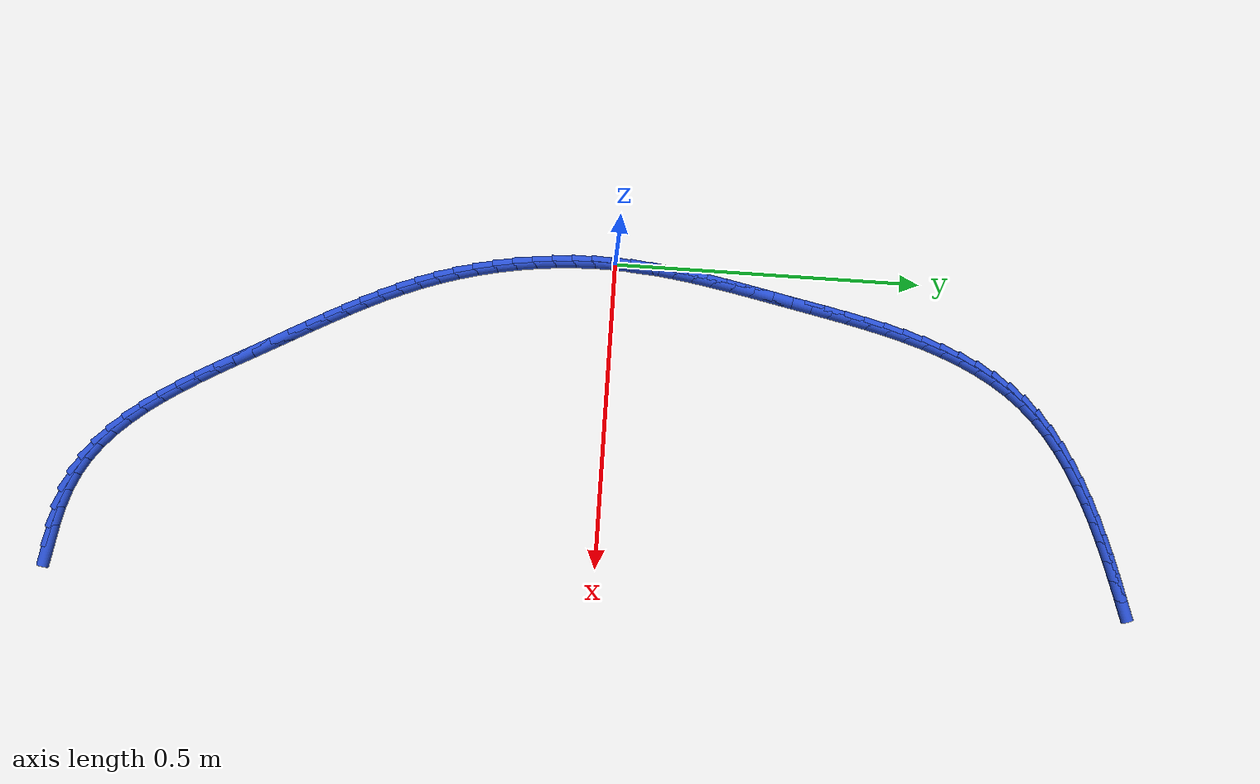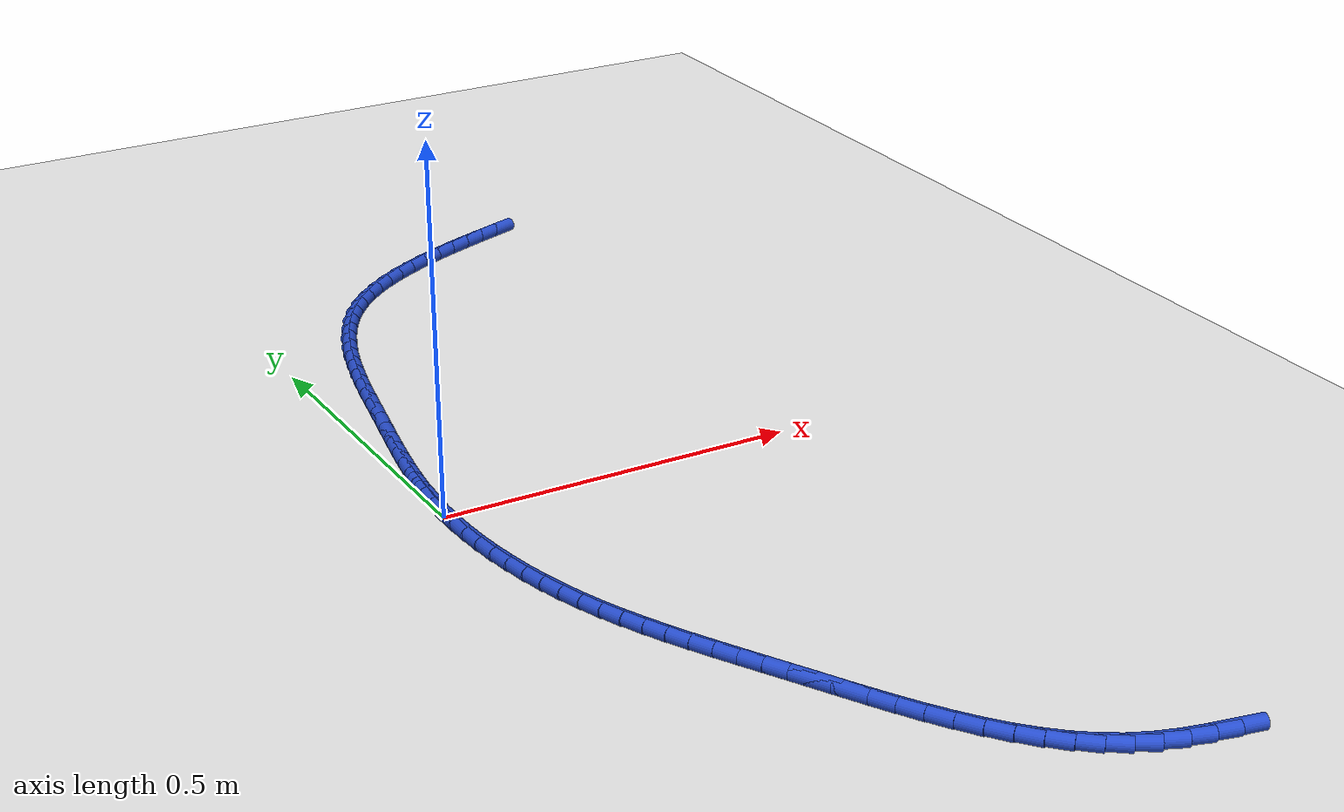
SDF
<sdf version="1.6">
 <world name="default">
  <model name="ground_plane">
   <static>1</static>
   <link name="link">
    <collision name="collision">
     <geometry><plane><normal>0 0 1</normal><size>100 100</size></plane></geometry>
     <surface><friction><ode><mu>100</mu><mu2>50</mu2></ode></friction></surface>
    </collision>
    <visual name="visual">
     <cast_shadows>0</cast_shadows>
     <geometry><plane><normal>0 0 1</normal><size>100 100</size></plane></geometry>
     <material>
      <script><uri>file://media/materials/scripts/gazebo.material</uri><name>Gazebo/WhiteGlow</name></script>
     </material>
    </visual>
   </link>
  </model>
  <model name="line">
   <link name="link_0">
    <pose>1.214306433183765e-17 6.938893903907228e-18 0.01 0 1.57 1.5225617370868163</pose>
    <collision name="collision">
     <geometry><cylinder><radius>0.01</radius><length>0.08</length></cylinder></geometry>
    </collision>
    <visual name="visual">
     <material>
      <script><name>Gazebo/Blue</name><uri>file://media/materials/scripts/gazebo.material</uri></script>
     </material>
     <geometry><cylinder><radius>0.01</radius><length>0.08</length></cylinder></geometry>
    </visual>
   </link>
   <link name="link_1">
    <pose>0.001538935067202059 0.03188047018547949 0.01 0 1.57 1.4866853946187928</pose>
    <collision name="collision">
     <geometry><cylinder><radius>0.01</radius><length>0.08</length></cylinder></geometry>
    </collision>
    <visual name="visual">
     <material>
      <script><name>Gazebo/Blue</name><uri>file://media/materials/scripts/gazebo.material</uri></script>
     </material>
     <geometry><cylinder><radius>0.01</radius><length>0.08</length></cylinder></geometry>
    </visual>
   </link>
   <link name="link_2">
    <pose>0.004210966931550192 0.06357346885209629 0.01 0 1.57 1.455333848812436</pose>
    <collision name="collision">
     <geometry><cylinder><radius>0.01</radius><length>0.08</length></cylinder></geometry>
    </collision>
    <visual name="visual">
     <material>
      <script><name>Gazebo/Blue</name><uri>file://media/materials/scripts/gazebo.material</uri></script>
     </material>
     <geometry><cylinder><radius>0.01</radius><length>0.08</length></cylinder></geometry>
    </visual>
   </link>
   <link name="link_3">
    <pose>0.007872541864150538 0.09514466830303787 0.01 0 1.57 1.4287310129041615</pose>
    <collision name="collision">
     <geometry><cylinder><radius>0.01</radius><length>0.08</length></cylinder></geometry>
    </collision>
    <visual name="visual">
     <material>
      <script><name>Gazebo/Blue</name><uri>file://media/materials/scripts/gazebo.material</uri></script>
     </material>
     <geometry><cylinder><radius>0.01</radius><length>0.08</length></cylinder></geometry>
    </visual>
   </link>
   <link name="link_4">
    <pose>0.012380106136109228 0.12665974084149179 0.01 0 1.57 1.4070091517079606</pose>
    <collision name="collision">
     <geometry><cylinder><radius>0.01</radius><length>0.08</length></cylinder></geometry>
    </collision>
    <visual name="visual">
     <material>
      <script><name>Gazebo/Blue</name><uri>file://media/materials/scripts/gazebo.material</uri></script>
     </material>
     <geometry><cylinder><radius>0.01</radius><length>0.08</length></cylinder></geometry>
    </visual>
   </link>
   <link name="link_5">
    <pose>0.017590106018532385 0.15818435877064543 0.01 0 1.57 1.3902243578277642</pose>
    <collision name="collision">
     <geometry><cylinder><radius>0.01</radius><length>0.08</length></cylinder></geometry>
    </collision>
    <visual name="visual">
     <material>
      <script><name>Gazebo/Blue</name><uri>file://media/materials/scripts/gazebo.material</uri></script>
     </material>
     <geometry><cylinder><radius>0.01</radius><length>0.08</length></cylinder></geometry>
    </visual>
   </link>
   <link name="link_6">
    <pose>0.023358987782526146 0.1897841943936864 0.01 0 1.57 1.378371838764414</pose>
    <collision name="collision">
     <geometry><cylinder><radius>0.01</radius><length>0.08</length></cylinder></geometry>
    </collision>
    <visual name="visual">
     <material>
      <script><name>Gazebo/Blue</name><uri>file://media/materials/scripts/gazebo.material</uri></script>
     </material>
     <geometry><cylinder><radius>0.01</radius><length>0.08</length></cylinder></geometry>
    </visual>
   </link>
   <link name="link_7">
    <pose>0.02954319769919665 0.22152492001380222 0.01 0 1.57 1.3713992717515353</pose>
    <collision name="collision">
     <geometry><cylinder><radius>0.01</radius><length>0.08</length></cylinder></geometry>
    </collision>
    <visual name="visual">
     <material>
      <script><name>Gazebo/Blue</name><uri>file://media/materials/scripts/gazebo.material</uri></script>
     </material>
     <geometry><cylinder><radius>0.01</radius><length>0.08</length></cylinder></geometry>
    </visual>
   </link>
   <link name="link_8">
    <pose>0.03599918203964998 0.2534722079341802 0.01 0 1.57 1.36921725694863</pose>
    <collision name="collision">
     <geometry><cylinder><radius>0.01</radius><length>0.08</length></cylinder></geometry>
    </collision>
    <visual name="visual">
     <material>
      <script><name>Gazebo/Blue</name><uri>file://media/materials/scripts/gazebo.material</uri></script>
     </material>
     <geometry><cylinder><radius>0.01</radius><length>0.08</length></cylinder></geometry>
    </visual>
   </link>
   <link name="link_9">
    <pose>0.04258338707499231 0.285691730458008 0.01 0 1.57 1.3710342729951255</pose>
    <collision name="collision">
     <geometry><cylinder><radius>0.01</radius><length>0.08</length></cylinder></geometry>
    </collision>
    <visual name="visual">
     <material>
      <script><name>Gazebo/Blue</name><uri>file://media/materials/scripts/gazebo.material</uri></script>
     </material>
     <geometry><cylinder><radius>0.01</radius><length>0.08</length></cylinder></geometry>
    </visual>
   </link>
   <link name="link_10">
    <pose>0.04917210961871936 0.3182346867112502 0.01 0 1.57 1.370329673234076</pose>
    <collision name="collision">
     <geometry><cylinder><radius>0.01</radius><length>0.08</length></cylinder></geometry>
    </collision>
    <visual name="visual">
     <material>
      <script><name>Gazebo/Blue</name><uri>file://media/materials/scripts/gazebo.material</uri></script>
     </material>
     <geometry><cylinder><radius>0.01</radius><length>0.08</length></cylinder></geometry>
    </visual>
   </link>
   <link name="link_11">
    <pose>0.05583254689926626 0.3510130889159019 0.01 0 1.57 1.3635773732517178</pose>
    <collision name="collision">
     <geometry><cylinder><radius>0.01</radius><length>0.08</length></cylinder></geometry>
    </collision>
    <visual name="visual">
     <material>
      <script><name>Gazebo/Blue</name><uri>file://media/materials/scripts/gazebo.material</uri></script>
     </material>
     <geometry><cylinder><radius>0.01</radius><length>0.08</length></cylinder></geometry>
    </visual>
   </link>
   <link name="link_12">
    <pose>0.06273844161529021 0.38386126620386646 0.01 0 1.57 1.3507266355099148</pose>
    <collision name="collision">
     <geometry><cylinder><radius>0.01</radius><length>0.08</length></cylinder></geometry>
    </collision>
    <visual name="visual">
     <material>
      <script><name>Gazebo/Blue</name><uri>file://media/materials/scripts/gazebo.material</uri></script>
     </material>
     <geometry><cylinder><radius>0.01</radius><length>0.08</length></cylinder></geometry>
    </visual>
   </link>
   <link name="link_13">
    <pose>0.0700646955437524 0.4166127026144865 0.01 0 1.57 1.3316353631254956</pose>
    <collision name="collision">
     <geometry><cylinder><radius>0.01</radius><length>0.08</length></cylinder></geometry>
    </collision>
    <visual name="visual">
     <material>
      <script><name>Gazebo/Blue</name><uri>file://media/materials/scripts/gazebo.material</uri></script>
     </material>
     <geometry><cylinder><radius>0.01</radius><length>0.08</length></cylinder></geometry>
    </visual>
   </link>
   <link name="link_14">
    <pose>0.07798621046161396 0.4491008821871044 0.01 0 1.57 1.30604081625387</pose>
    <collision name="collision">
     <geometry><cylinder><radius>0.01</radius><length>0.08</length></cylinder></geometry>
    </collision>
    <visual name="visual">
     <material>
      <script><name>Gazebo/Blue</name><uri>file://media/materials/scripts/gazebo.material</uri></script>
     </material>
     <geometry><cylinder><radius>0.01</radius><length>0.08</length></cylinder></geometry>
    </visual>
   </link>
   <link name="link_15">
    <pose>0.08667788814583602 0.48115928896106275 0.01 0 1.57 1.2735728215244417</pose>
    <collision name="collision">
     <geometry><cylinder><radius>0.01</radius><length>0.08</length></cylinder></geometry>
    </collision>
    <visual name="visual">
     <material>
      <script><name>Gazebo/Blue</name><uri>file://media/materials/scripts/gazebo.material</uri></script>
     </material>
     <geometry><cylinder><radius>0.01</radius><length>0.08</length></cylinder></geometry>
    </visual>
   </link>
   <link name="link_16">
    <pose>0.09631463037337971 0.512621406975704 0.01 0 1.57 1.2337748024901196</pose>
    <collision name="collision">
     <geometry><cylinder><radius>0.01</radius><length>0.08</length></cylinder></geometry>
    </collision>
    <visual name="visual">
     <material>
      <script><name>Gazebo/Blue</name><uri>file://media/materials/scripts/gazebo.material</uri></script>
     </material>
     <geometry><cylinder><radius>0.01</radius><length>0.08</length></cylinder></geometry>
    </visual>
   </link>
   <link name="link_17">
    <pose>0.10707133892120617 0.5433207202703704 0.01 0 1.57 1.1861391492259479</pose>
    <collision name="collision">
     <geometry><cylinder><radius>0.01</radius><length>0.08</length></cylinder></geometry>
    </collision>
    <visual name="visual">
     <material>
      <script><name>Gazebo/Blue</name><uri>file://media/materials/scripts/gazebo.material</uri></script>
     </material>
     <geometry><cylinder><radius>0.01</radius><length>0.08</length></cylinder></geometry>
    </visual>
   </link>
   <link name="link_18">
    <pose>0.1191229155662766 0.5730907128844047 0.01 0 1.57 1.1301652648463916</pose>
    <collision name="collision">
     <geometry><cylinder><radius>0.01</radius><length>0.08</length></cylinder></geometry>
    </collision>
    <visual name="visual">
     <material>
      <script><name>Gazebo/Blue</name><uri>file://media/materials/scripts/gazebo.material</uri></script>
     </material>
     <geometry><cylinder><radius>0.01</radius><length>0.08</length></cylinder></geometry>
    </visual>
   </link>
   <link name="link_19">
    <pose>0.13264426208555213 0.6017648688571493 0.01 0 1.57 1.065449106538437</pose>
    <collision name="collision">
     <geometry><cylinder><radius>0.01</radius><length>0.08</length></cylinder></geometry>
    </collision>
    <visual name="visual">
     <material>
      <script><name>Gazebo/Blue</name><uri>file://media/materials/scripts/gazebo.material</uri></script>
     </material>
     <geometry><cylinder><radius>0.01</radius><length>0.08</length></cylinder></geometry>
    </visual>
   </link>
   <link name="link_20">
    <pose>0.14781028025599385 0.6291766722279466 0.01 0 1.57 0.991809695278978</pose>
    <collision name="collision">
     <geometry><cylinder><radius>0.01</radius><length>0.08</length></cylinder></geometry>
    </collision>
    <visual name="visual">
     <material>
      <script><name>Gazebo/Blue</name><uri>file://media/materials/scripts/gazebo.material</uri></script>
     </material>
     <geometry><cylinder><radius>0.01</radius><length>0.08</length></cylinder></geometry>
    </visual>
   </link>
   <link name="link_21">
    <pose>0.1647958718545629 0.6551596070361391 0.01 0 1.57 0.9094473548559179</pose>
    <collision name="collision">
     <geometry><cylinder><radius>0.01</radius><length>0.08</length></cylinder></geometry>
    </collision>
    <visual name="visual">
     <material>
      <script><name>Gazebo/Blue</name><uri>file://media/materials/scripts/gazebo.material</uri></script>
     </material>
     <geometry><cylinder><radius>0.01</radius><length>0.08</length></cylinder></geometry>
    </visual>
   </link>
   <link name="link_22">
    <pose>0.1837759386582205 0.6795471573210692 0.01 0 1.57 0.8205057366804371</pose>
    <collision name="collision">
     <geometry><cylinder><radius>0.01</radius><length>0.08</length></cylinder></geometry>
    </collision>
    <visual name="visual">
     <material>
      <script><name>Gazebo/Blue</name><uri>file://media/materials/scripts/gazebo.material</uri></script>
     </material>
     <geometry><cylinder><radius>0.01</radius><length>0.08</length></cylinder></geometry>
    </visual>
   </link>
   <link name="link_23">
    <pose>0.2048900490887264 0.7021983944753233 0.01 0 1.57 0.7361860833241909</pose>
    <collision name="collision">
     <geometry><cylinder><radius>0.01</radius><length>0.08</length></cylinder></geometry>
    </collision>
    <visual name="visual">
     <material>
      <script><name>Gazebo/Blue</name><uri>file://media/materials/scripts/gazebo.material</uri></script>
     </material>
     <geometry><cylinder><radius>0.01</radius><length>0.08</length></cylinder></geometry>
    </visual>
   </link>
   <link name="link_24">
    <pose>0.22802132071984266 0.7231581038832696 0.01 0 1.57 0.6613907636054641</pose>
    <collision name="collision">
     <geometry><cylinder><radius>0.01</radius><length>0.08</length></cylinder></geometry>
    </collision>
    <visual name="visual">
     <material>
      <script><name>Gazebo/Blue</name><uri>file://media/materials/scripts/gazebo.material</uri></script>
     </material>
     <geometry><cylinder><radius>0.01</radius><length>0.08</length></cylinder></geometry>
    </visual>
   </link>
   <link name="link_25">
    <pose>0.25293973699146355 0.7425529992666985 0.01 0 1.57 0.5959907343727335</pose>
    <collision name="collision">
     <geometry><cylinder><radius>0.01</radius><length>0.08</length></cylinder></geometry>
    </collision>
    <visual name="visual">
     <material>
      <script><name>Gazebo/Blue</name><uri>file://media/materials/scripts/gazebo.material</uri></script>
     </material>
     <geometry><cylinder><radius>0.01</radius><length>0.08</length></cylinder></geometry>
    </visual>
   </link>
   <link name="link_26">
    <pose>0.27941478531019587 0.7605101535597917 0.01 0 1.57 0.539514092258927</pose>
    <collision name="collision">
     <geometry><cylinder><radius>0.01</radius><length>0.08</length></cylinder></geometry>
    </collision>
    <visual name="visual">
     <material>
      <script><name>Gazebo/Blue</name><uri>file://media/materials/scripts/gazebo.material</uri></script>
     </material>
     <geometry><cylinder><radius>0.01</radius><length>0.08</length></cylinder></geometry>
    </visual>
   </link>
   <link name="link_27">
    <pose>0.3072159530826459 0.7771566396967292 0.01 0 1.57 0.4913378514632935</pose>
    <collision name="collision">
     <geometry><cylinder><radius>0.01</radius><length>0.08</length></cylinder></geometry>
    </collision>
    <visual name="visual">
     <material>
      <script><name>Gazebo/Blue</name><uri>file://media/materials/scripts/gazebo.material</uri></script>
     </material>
     <geometry><cylinder><radius>0.01</radius><length>0.08</length></cylinder></geometry>
    </visual>
   </link>
   <link name="link_28">
    <pose>0.33611272771542017 0.7926195306116915 0.01 0 1.57 0.4508100851412401</pose>
    <collision name="collision">
     <geometry><cylinder><radius>0.01</radius><length>0.08</length></cylinder></geometry>
    </collision>
    <visual name="visual">
     <material>
      <script><name>Gazebo/Blue</name><uri>file://media/materials/scripts/gazebo.material</uri></script>
     </material>
     <geometry><cylinder><radius>0.01</radius><length>0.08</length></cylinder></geometry>
    </visual>
   </link>
   <link name="link_29">
    <pose>0.3658745966151252 0.80702589923886 0.01 0 1.57 0.4173279921610457</pose>
    <collision name="collision">
     <geometry><cylinder><radius>0.01</radius><length>0.08</length></cylinder></geometry>
    </collision>
    <visual name="visual">
     <material>
      <script><name>Gazebo/Blue</name><uri>file://media/materials/scripts/gazebo.material</uri></script>
     </material>
     <geometry><cylinder><radius>0.01</radius><length>0.08</length></cylinder></geometry>
    </visual>
   </link>
   <link name="link_30">
    <pose>0.39627104718836764 0.820502818512415 0.01 0 1.57 0.3903842734429037</pose>
    <collision name="collision">
     <geometry><cylinder><radius>0.01</radius><length>0.08</length></cylinder></geometry>
    </collision>
    <visual name="visual">
     <material>
      <script><name>Gazebo/Blue</name><uri>file://media/materials/scripts/gazebo.material</uri></script>
     </material>
     <geometry><cylinder><radius>0.01</radius><length>0.08</length></cylinder></geometry>
    </visual>
   </link>
   <link name="link_31">
    <pose>0.4270715668417537 0.8331773613665373 0.01 0 1.57 0.36959403629268767</pose>
    <collision name="collision">
     <geometry><cylinder><radius>0.01</radius><length>0.08</length></cylinder></geometry>
    </collision>
    <visual name="visual">
     <material>
      <script><name>Gazebo/Blue</name><uri>file://media/materials/scripts/gazebo.material</uri></script>
     </material>
     <geometry><cylinder><radius>0.01</radius><length>0.08</length></cylinder></geometry>
    </visual>
   </link>
   <link name="link_32">
    <pose>0.4580456429818903 0.845176600735408 0.01 0 1.57 0.35470477418256385</pose>
    <collision name="collision">
     <geometry><cylinder><radius>0.01</radius><length>0.08</length></cylinder></geometry>
    </collision>
    <visual name="visual">
     <material>
      <script><name>Gazebo/Blue</name><uri>file://media/materials/scripts/gazebo.material</uri></script>
     </material>
     <geometry><cylinder><radius>0.01</radius><length>0.08</length></cylinder></geometry>
    </visual>
   </link>
   <link name="link_33">
    <pose>0.4889633488913533 0.8566275720607001 0.01 0 1.57 0.34464761237326624</pose>
    <collision name="collision">
     <geometry><cylinder><radius>0.01</radius><length>0.08</length></cylinder></geometry>
    </collision>
    <visual name="visual">
     <material>
      <script><name>Gazebo/Blue</name><uri>file://media/materials/scripts/gazebo.material</uri></script>
     </material>
     <geometry><cylinder><radius>0.01</radius><length>0.08</length></cylinder></geometry>
    </visual>
   </link>
   <link name="link_176">
    <pose>0.5170683795455051 -0.8910182449206505 0.01 0 1.57 -0.1913418410467637</pose>
    <collision name="collision">
     <geometry><cylinder><radius>0.01</radius><length>0.08</length></cylinder></geometry>
    </collision>
    <visual name="visual">
     <material>
      <script><name>Gazebo/Blue</name><uri>file://media/materials/scripts/gazebo.material</uri></script>
     </material>
     <geometry><cylinder><radius>0.01</radius><length>0.08</length></cylinder></geometry>
    </visual>
   </link>
   <link name="link_177">
    <pose>0.4856905332471882 -0.8849399899387843 0.01 0 1.57 -0.24486145402102563</pose>
    <collision name="collision">
     <geometry><cylinder><radius>0.01</radius><length>0.08</length></cylinder></geometry>
    </collision>
    <visual name="visual">
     <material>
      <script><name>Gazebo/Blue</name><uri>file://media/materials/scripts/gazebo.material</uri></script>
     </material>
     <geometry><cylinder><radius>0.01</radius><length>0.08</length></cylinder></geometry>
    </visual>
   </link>
   <link name="link_178">
    <pose>0.4553076012065647 -0.877348040546343 0.01 0 1.57 -0.3231906567569481</pose>
    <collision name="collision">
     <geometry><cylinder><radius>0.01</radius><length>0.08</length></cylinder></geometry>
    </collision>
    <visual name="visual">
     <material>
      <script><name>Gazebo/Blue</name><uri>file://media/materials/scripts/gazebo.material</uri></script>
     </material>
     <geometry><cylinder><radius>0.01</radius><length>0.08</length></cylinder></geometry>
    </visual>
   </link>
   <link name="link_179">
    <pose>0.4262115774868905 -0.8676027866340968 0.01 0 1.57 -0.4275061918619606</pose>
    <collision name="collision">
     <geometry><cylinder><radius>0.01</radius><length>0.08</length></cylinder></geometry>
    </collision>
    <visual name="visual">
     <material>
      <script><name>Gazebo/Blue</name><uri>file://media/materials/scripts/gazebo.material</uri></script>
     </material>
     <geometry><cylinder><radius>0.01</radius><length>0.08</length></cylinder></geometry>
    </visual>
   </link>
   <link name="link_180">
    <pose>0.3986940046700926 -0.8550656118717932 0.01 0 1.57 -0.5473215215068316</pose>
    <collision name="collision">
     <geometry><cylinder><radius>0.01</radius><length>0.08</length></cylinder></geometry>
    </collision>
    <visual name="visual">
     <material>
      <script><name>Gazebo/Blue</name><uri>file://media/materials/scripts/gazebo.material</uri></script>
     </material>
     <geometry><cylinder><radius>0.01</radius><length>0.08</length></cylinder></geometry>
    </visual>
   </link>
   <link name="link_181">
    <pose>0.372926374589636 -0.8393621498596827 0.01 0 1.57 -0.6574235807658118</pose>
    <collision name="collision">
     <geometry><cylinder><radius>0.01</radius><length>0.08</length></cylinder></geometry>
    </collision>
    <visual name="visual">
     <material>
      <script><name>Gazebo/Blue</name><uri>file://media/materials/scripts/gazebo.material</uri></script>
     </material>
     <geometry><cylinder><radius>0.01</radius><length>0.08</length></cylinder></geometry>
    </visual>
   </link>
   <link name="link_182">
    <pose>0.34879925889868857 -0.8207363821806201 0.01 0 1.57 -0.7530192209728769</pose>
    <collision name="collision">
     <geometry><cylinder><radius>0.01</radius><length>0.08</length></cylinder></geometry>
    </collision>
    <visual name="visual">
     <material>
      <script><name>Gazebo/Blue</name><uri>file://media/materials/scripts/gazebo.material</uri></script>
     </material>
     <geometry><cylinder><radius>0.01</radius><length>0.08</length></cylinder></geometry>
    </visual>
   </link>
   <link name="link_183">
    <pose>0.32616310694685896 -0.7995206057013117 0.01 0 1.57 -0.8340271128580058</pose>
    <collision name="collision">
     <geometry><cylinder><radius>0.01</radius><length>0.08</length></cylinder></geometry>
    </collision>
    <visual name="visual">
     <material>
      <script><name>Gazebo/Blue</name><uri>file://media/materials/scripts/gazebo.material</uri></script>
     </material>
     <geometry><cylinder><radius>0.01</radius><length>0.08</length></cylinder></geometry>
    </visual>
   </link>
   <link name="link_184">
    <pose>0.30486836808375695 -0.7760471172884645 0.01 0 1.57 -0.9012684540095958</pose>
    <collision name="collision">
     <geometry><cylinder><radius>0.01</radius><length>0.08</length></cylinder></geometry>
    </collision>
    <visual name="visual">
     <material>
      <script><name>Gazebo/Blue</name><uri>file://media/materials/scripts/gazebo.material</uri></script>
     </material>
     <geometry><cylinder><radius>0.01</radius><length>0.08</length></cylinder></geometry>
    </visual>
   </link>
   <link name="link_185">
    <pose>0.28476549165899134 -0.7506482138087854 0.01 0 1.57 -0.9559510882508738</pose>
    <collision name="collision">
     <geometry><cylinder><radius>0.01</radius><length>0.08</length></cylinder></geometry>
    </collision>
    <visual name="visual">
     <material>
      <script><name>Gazebo/Blue</name><uri>file://media/materials/scripts/gazebo.material</uri></script>
     </material>
     <geometry><cylinder><radius>0.01</radius><length>0.08</length></cylinder></geometry>
    </visual>
   </link>
   <link name="link_186">
    <pose>0.265704927022171 -0.7236561921289802 0.01 0 1.57 -0.9993270843893337</pose>
    <collision name="collision">
     <geometry><cylinder><radius>0.01</radius><length>0.08</length></cylinder></geometry>
    </collision>
    <visual name="visual">
     <material>
      <script><name>Gazebo/Blue</name><uri>file://media/materials/scripts/gazebo.material</uri></script>
     </material>
     <geometry><cylinder><radius>0.01</radius><length>0.08</length></cylinder></geometry>
    </visual>
   </link>
   <link name="link_187">
    <pose>0.24753712352290522 -0.6954033491157562 0.01 0 1.57 -1.0325018413363716</pose>
    <collision name="collision">
     <geometry><cylinder><radius>0.01</radius><length>0.08</length></cylinder></geometry>
    </collision>
    <visual name="visual">
     <material>
      <script><name>Gazebo/Blue</name><uri>file://media/materials/scripts/gazebo.material</uri></script>
     </material>
     <geometry><cylinder><radius>0.01</radius><length>0.08</length></cylinder></geometry>
    </visual>
   </link>
   <link name="link_188">
    <pose>0.23011253051080285 -0.6662219816358196 0.01 0 1.57 -1.0563419961048965</pose>
    <collision name="collision">
     <geometry><cylinder><radius>0.01</radius><length>0.08</length></cylinder></geometry>
    </collision>
    <visual name="visual">
     <material>
      <script><name>Gazebo/Blue</name><uri>file://media/materials/scripts/gazebo.material</uri></script>
     </material>
     <geometry><cylinder><radius>0.01</radius><length>0.08</length></cylinder></geometry>
    </visual>
   </link>
   <link name="link_189">
    <pose>0.2132815973354726 -0.6364443865558762 0.01 0 1.57 -1.0714358240841881</pose>
    <collision name="collision">
     <geometry><cylinder><radius>0.01</radius><length>0.08</length></cylinder></geometry>
    </collision>
    <visual name="visual">
     <material>
      <script><name>Gazebo/Blue</name><uri>file://media/materials/scripts/gazebo.material</uri></script>
     </material>
     <geometry><cylinder><radius>0.01</radius><length>0.08</length></cylinder></geometry>
    </visual>
   </link>
   <link name="link_190">
    <pose>0.19689477334652444 -0.6064028607426345 0.01 0 1.57 -1.0780746877304712</pose>
    <collision name="collision">
     <geometry><cylinder><radius>0.01</radius><length>0.08</length></cylinder></geometry>
    </collision>
    <visual name="visual">
     <material>
      <script><name>Gazebo/Blue</name><uri>file://media/materials/scripts/gazebo.material</uri></script>
     </material>
     <geometry><cylinder><radius>0.01</radius><length>0.08</length></cylinder></geometry>
    </visual>
   </link>
   <link name="link_191">
    <pose>0.18080250789356683 -0.5764297010627999 0.01 0 1.57 -1.0766275960829241</pose>
    <collision name="collision">
     <geometry><cylinder><radius>0.01</radius><length>0.08</length></cylinder></geometry>
    </collision>
    <visual name="visual">
     <material>
      <script><name>Gazebo/Blue</name><uri>file://media/materials/scripts/gazebo.material</uri></script>
     </material>
     <geometry><cylinder><radius>0.01</radius><length>0.08</length></cylinder></geometry>
    </visual>
   </link>
   <link name="link_192">
    <pose>0.16486293429791782 -0.5468437523335128 0.01 0 1.57 -1.07382553141613</pose>
    <collision name="collision">
     <geometry><cylinder><radius>0.01</radius><length>0.08</length></cylinder></geometry>
    </collision>
    <visual name="visual">
     <material>
      <script><name>Gazebo/Blue</name><uri>file://media/materials/scripts/gazebo.material</uri></script>
     </material>
     <geometry><cylinder><radius>0.01</radius><length>0.08</length></cylinder></geometry>
    </visual>
   </link>
   <link name="link_193">
    <pose>0.14907011479541227 -0.5177258935692165 0.01 0 1.57 -1.075712926433977</pose>
    <collision name="collision">
     <geometry><cylinder><radius>0.01</radius><length>0.08</length></cylinder></geometry>
    </collision>
    <visual name="visual">
     <material>
      <script><name>Gazebo/Blue</name><uri>file://media/materials/scripts/gazebo.material</uri></script>
     </material>
     <geometry><cylinder><radius>0.01</radius><length>0.08</length></cylinder></geometry>
    </visual>
   </link>
   <link name="link_194">
    <pose>0.13353462265164953 -0.4889530321656629 0.01 0 1.57 -1.0826640300801091</pose>
    <collision name="collision">
     <geometry><cylinder><radius>0.01</radius><length>0.08</length></cylinder></geometry>
    </collision>
    <visual name="visual">
     <material>
      <script><name>Gazebo/Blue</name><uri>file://media/materials/scripts/gazebo.material</uri></script>
     </material>
     <geometry><cylinder><radius>0.01</radius><length>0.08</length></cylinder></geometry>
    </visual>
   </link>
   <link name="link_195">
    <pose>0.11837080257702795 -0.4603954729874793 0.01 0 1.57 -1.0948115409767132</pose>
    <collision name="collision">
     <geometry><cylinder><radius>0.01</radius><length>0.08</length></cylinder></geometry>
    </collision>
    <visual name="visual">
     <material>
      <script><name>Gazebo/Blue</name><uri>file://media/materials/scripts/gazebo.material</uri></script>
     </material>
     <geometry><cylinder><radius>0.01</radius><length>0.08</length></cylinder></geometry>
    </visual>
   </link>
   <link name="link_196">
    <pose>0.10369299928194527 -0.4319235208992923 0.01 0 1.57 -1.1122275512252846</pose>
    <collision name="collision">
     <geometry><cylinder><radius>0.01</radius><length>0.08</length></cylinder></geometry>
    </collision>
    <visual name="visual">
     <material>
      <script><name>Gazebo/Blue</name><uri>file://media/materials/scripts/gazebo.material</uri></script>
     </material>
     <geometry><cylinder><radius>0.01</radius><length>0.08</length></cylinder></geometry>
    </visual>
   </link>
   <link name="link_197">
    <pose>0.08961555747680042 -0.4034074807657305 0.01 0 1.57 -1.134909268239965</pose>
    <collision name="collision">
     <geometry><cylinder><radius>0.01</radius><length>0.08</length></cylinder></geometry>
    </collision>
    <visual name="visual">
     <material>
      <script><name>Gazebo/Blue</name><uri>file://media/materials/scripts/gazebo.material</uri></script>
     </material>
     <geometry><cylinder><radius>0.01</radius><length>0.08</length></cylinder></geometry>
    </visual>
   </link>
   <link name="link_198">
    <pose>0.07625282187199116 -0.3747176574514202 0.01 0 1.57 -1.1627622732460718</pose>
    <collision name="collision">
     <geometry><cylinder><radius>0.01</radius><length>0.08</length></cylinder></geometry>
    </collision>
    <visual name="visual">
     <material>
      <script><name>Gazebo/Blue</name><uri>file://media/materials/scripts/gazebo.material</uri></script>
     </material>
     <geometry><cylinder><radius>0.01</radius><length>0.08</length></cylinder></geometry>
    </visual>
   </link>
   <link name="link_199">
    <pose>0.06371913717791577 -0.3457243558209889 0.01 0 1.57 -1.1955831253390616</pose>
    <collision name="collision">
     <geometry><cylinder><radius>0.01</radius><length>0.08</length></cylinder></geometry>
    </collision>
    <visual name="visual">
     <material>
      <script><name>Gazebo/Blue</name><uri>file://media/materials/scripts/gazebo.material</uri></script>
     </material>
     <geometry><cylinder><radius>0.01</radius><length>0.08</length></cylinder></geometry>
    </visual>
   </link>
   <link name="link_200">
    <pose>0.05212884810497244 -0.31629788073906373 0.01 0 1.57 -1.2330248154381371</pose>
    <collision name="collision">
     <geometry><cylinder><radius>0.01</radius><length>0.08</length></cylinder></geometry>
    </collision>
    <visual name="visual">
     <material>
      <script><name>Gazebo/Blue</name><uri>file://media/materials/scripts/gazebo.material</uri></script>
     </material>
     <geometry><cylinder><radius>0.01</radius><length>0.08</length></cylinder></geometry>
    </visual>
   </link>
   <link name="link_201">
    <pose>0.04159593673417612 -0.28630936583409733 0.01 0 1.57 -1.27293917657255</pose>
    <collision name="collision">
     <geometry><cylinder><radius>0.01</radius><length>0.08</length></cylinder></geometry>
    </collision>
    <visual name="visual">
     <material>
      <script><name>Gazebo/Blue</name><uri>file://media/materials/scripts/gazebo.material</uri></script>
     </material>
     <geometry><cylinder><radius>0.01</radius><length>0.08</length></cylinder></geometry>
    </visual>
   </link>
   <link name="link_202">
    <pose>0.03220105131739426 -0.2557061268451067 0.01 0 1.57 -1.3121892160651396</pose>
    <collision name="collision">
     <geometry><cylinder><radius>0.01</radius><length>0.08</length></cylinder></geometry>
    </collision>
    <visual name="visual">
     <material>
      <script><name>Gazebo/Blue</name><uri>file://media/materials/scripts/gazebo.material</uri></script>
     </material>
     <geometry><cylinder><radius>0.01</radius><length>0.08</length></cylinder></geometry>
    </visual>
   </link>
   <link name="link_203">
    <pose>0.0239651149787867 -0.22457197706926527 0.01 0 1.57 -1.3506977250719678</pose>
    <collision name="collision">
     <geometry><cylinder><radius>0.01</radius><length>0.08</length></cylinder></geometry>
    </collision>
    <visual name="visual">
     <material>
      <script><name>Gazebo/Blue</name><uri>file://media/materials/scripts/gazebo.material</uri></script>
     </material>
     <geometry><cylinder><radius>0.01</radius><length>0.08</length></cylinder></geometry>
    </visual>
   </link>
   <link name="link_204">
    <pose>0.016902840399336483 -0.19300492333268493 0.01 0 1.57 -1.3887121487021397</pose>
    <collision name="collision">
     <geometry><cylinder><radius>0.01</radius><length>0.08</length></cylinder></geometry>
    </collision>
    <visual name="visual">
     <material>
      <script><name>Gazebo/Blue</name><uri>file://media/materials/scripts/gazebo.material</uri></script>
     </material>
     <geometry><cylinder><radius>0.01</radius><length>0.08</length></cylinder></geometry>
    </visual>
   </link>
   <link name="link_205">
    <pose>0.011028940260026822 -0.16110297246147853 0.01 0 1.57 -1.4264744232707351</pose>
    <collision name="collision">
     <geometry><cylinder><radius>0.01</radius><length>0.08</length></cylinder></geometry>
    </collision>
    <visual name="visual">
     <material>
      <script><name>Gazebo/Blue</name><uri>file://media/materials/scripts/gazebo.material</uri></script>
     </material>
     <geometry><cylinder><radius>0.01</radius><length>0.08</length></cylinder></geometry>
    </visual>
   </link>
   <link name="link_206">
    <pose>0.0063581272418409595 -0.12896413128175882 0.01 0 1.57 -1.4642234352241477</pose>
    <collision name="collision">
     <geometry><cylinder><radius>0.01</radius><length>0.08</length></cylinder></geometry>
    </collision>
    <visual name="visual">
     <material>
      <script><name>Gazebo/Blue</name><uri>file://media/materials/scripts/gazebo.material</uri></script>
     </material>
     <geometry><cylinder><radius>0.01</radius><length>0.08</length></cylinder></geometry>
    </visual>
   </link>
   <link name="link_207">
    <pose>0.0029051140257621106 -0.09668640661963834 0.01 0 1.57 -1.5021975484587866</pose>
    <collision name="collision">
     <geometry><cylinder><radius>0.01</radius><length>0.08</length></cylinder></geometry>
    </collision>
    <visual name="visual">
     <material>
      <script><name>Gazebo/Blue</name><uri>file://media/materials/scripts/gazebo.material</uri></script>
     </material>
     <geometry><cylinder><radius>0.01</radius><length>0.08</length></cylinder></geometry>
    </visual>
   </link>
   <link name="link_208">
    <pose>0.0006846132927735183 -0.06436780530122996 0.01 0 1.57 -1.54063711748439</pose>
    <collision name="collision">
     <geometry><cylinder><radius>0.01</radius><length>0.08</length></cylinder></geometry>
    </collision>
    <visual name="visual">
     <material>
      <script><name>Gazebo/Blue</name><uri>file://media/materials/scripts/gazebo.material</uri></script>
     </material>
     <geometry><cylinder><radius>0.01</radius><length>0.08</length></cylinder></geometry>
    </visual>
   </link>
   <link name="link_209">
    <pose>-0.00028866227614160207 -0.03210633415264553 0.01 0 1.57 1.561805748887243</pose>
    <collision name="collision">
     <geometry><cylinder><radius>0.01</radius><length>0.08</length></cylinder></geometry>
    </collision>
    <visual name="visual">
     <material>
      <script><name>Gazebo/Blue</name><uri>file://media/materials/scripts/gazebo.material</uri></script>
     </material>
     <geometry><cylinder><radius>0.01</radius><length>0.08</length></cylinder></geometry>
    </visual>
   </link>
   <link name="link_210">
    <pose>1.214306433183765e-17 -1.1102230246251565e-16 0.01 0 1.57 1.5216943501378248</pose>
    <collision name="collision">
     <geometry><cylinder><radius>0.01</radius><length>0.08</length></cylinder></geometry>
    </collision>
    <visual name="visual">
     <material>
      <script><name>Gazebo/Blue</name><uri>file://media/materials/scripts/gazebo.material</uri></script>
     </material>
     <geometry><cylinder><radius>0.01</radius><length>0.08</length></cylinder></geometry>
    </visual>
   </link>
   <link name="link_211">
    <pose>0.0015653128021815635 0.031853190330595874 0.01 0 1.57 1.4803614203587097</pose>
    <collision name="collision">
     <geometry><cylinder><radius>0.01</radius><length>0.08</length></cylinder></geometry>
    </collision>
    <visual name="visual">
     <material>
      <script><name>Gazebo/Blue</name><uri>file://media/materials/scripts/gazebo.material</uri></script>
     </material>
     <geometry><cylinder><radius>0.01</radius><length>0.08</length></cylinder></geometry>
    </visual>
   </link>
   <link name="link_212">
    <pose>0.004421988811386456 0.06335523001303042 0.01 0 1.57 1.501112592277623</pose>
    <collision name="collision">
     <geometry><cylinder><radius>0.01</radius><length>0.08</length></cylinder></geometry>
    </collision>
    <visual name="visual">
     <material>
      <script><name>Gazebo/Blue</name><uri>file://media/materials/scripts/gazebo.material</uri></script>
     </material>
     <geometry><cylinder><radius>0.01</radius><length>0.08</length></cylinder></geometry>
    </visual>
   </link>
  </model>
 </world>
</sdf>
